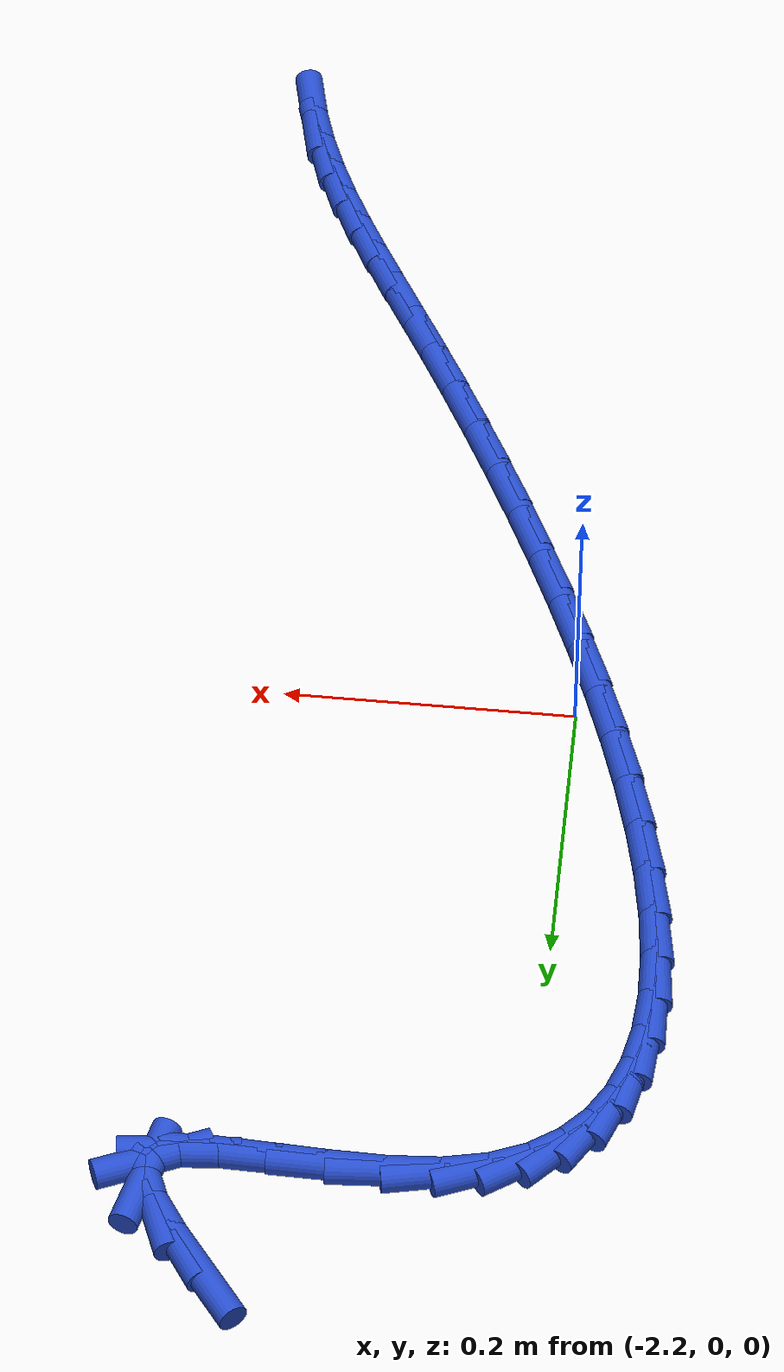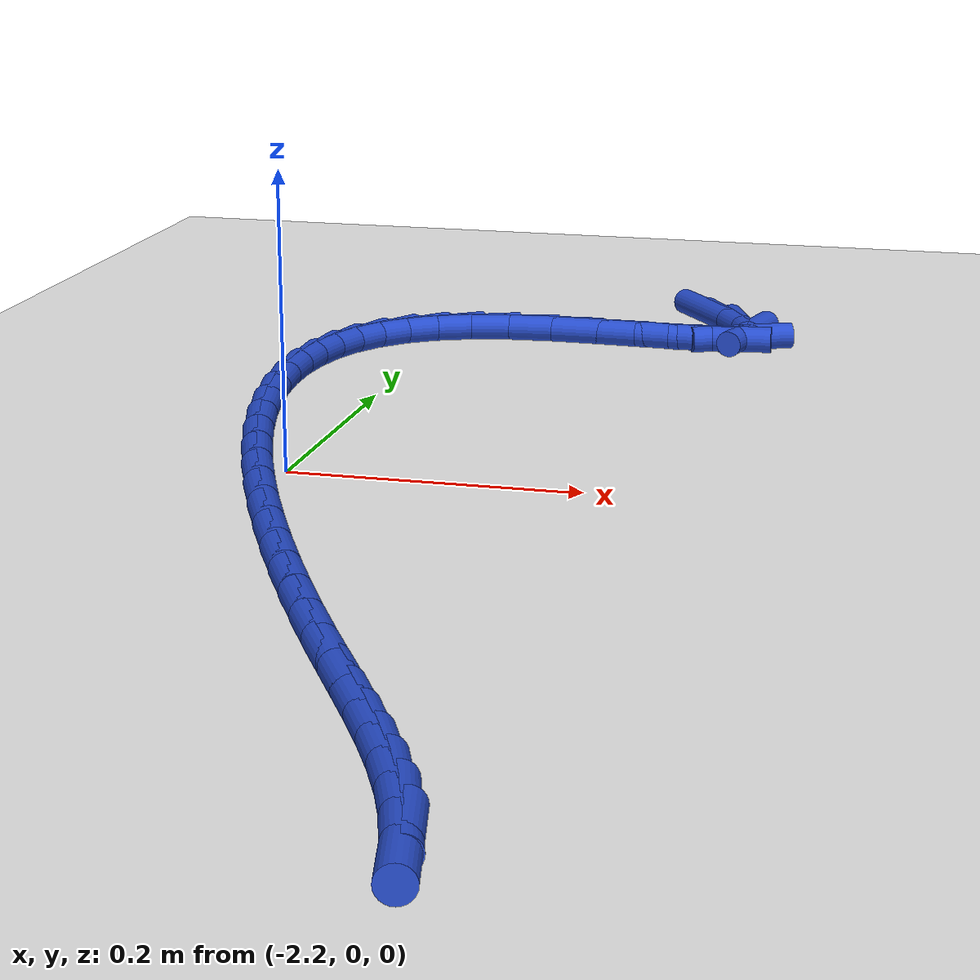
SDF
<sdf version="1.6">
 <world name="default">
  <model name="ground_plane">
   <static>1</static>
   <link name="link">
    <collision name="collision">
     <geometry><plane><normal>0 0 1</normal><size>100 100</size></plane></geometry>
     <surface><friction><ode><mu>100</mu><mu2>50</mu2></ode></friction></surface>
    </collision>
    <visual name="visual">
     <cast_shadows>0</cast_shadows>
     <geometry><plane><normal>0 0 1</normal><size>100 100</size></plane></geometry>
     <material>
      <script><uri>file://media/materials/scripts/gazebo.material</uri><name>Gazebo/WhiteGlow</name></script>
     </material>
    </visual>
   </link>
  </model>
  <model name="line">
   <link name="link_106">
    <pose>-2.003185451541206 0.4839385128213552 0.01 0 1.57 -0.9181451136404912</pose>
    <collision name="collision">
     <geometry><cylinder><radius>0.01</radius><length>0.08</length></cylinder></geometry>
    </collision>
    <visual name="visual">
     <material>
      <script><name>Gazebo/Blue</name><uri>file://media/materials/scripts/gazebo.material</uri></script>
     </material>
     <geometry><cylinder><radius>0.01</radius><length>0.08</length></cylinder></geometry>
    </visual>
   </link>
   <link name="link_107">
    <pose>-1.9820492375744934 0.45628765192570137 0.01 0 1.57 -0.9885985828411454</pose>
    <collision name="collision">
     <geometry><cylinder><radius>0.01</radius><length>0.08</length></cylinder></geometry>
    </collision>
    <visual name="visual">
     <material>
      <script><name>Gazebo/Blue</name><uri>file://media/materials/scripts/gazebo.material</uri></script>
     </material>
     <geometry><cylinder><radius>0.01</radius><length>0.08</length></cylinder></geometry>
    </visual>
   </link>
   <link name="link_108">
    <pose>-1.9662816024732028 0.4323361140234032 0.01 0 1.57 -1.1919953408915438</pose>
    <collision name="collision">
     <geometry><cylinder><radius>0.01</radius><length>0.08</length></cylinder></geometry>
    </collision>
    <visual name="visual">
     <material>
      <script><name>Gazebo/Blue</name><uri>file://media/materials/scripts/gazebo.material</uri></script>
     </material>
     <geometry><cylinder><radius>0.01</radius><length>0.08</length></cylinder></geometry>
    </visual>
   </link>
   <link name="link_109">
    <pose>-1.9586428859786063 0.41314447255337716 0.01 0 1.57 1.3323221442981257</pose>
    <collision name="collision">
     <geometry><cylinder><radius>0.01</radius><length>0.08</length></cylinder></geometry>
    </collision>
    <visual name="visual">
     <material>
      <script><name>Gazebo/Blue</name><uri>file://media/materials/scripts/gazebo.material</uri></script>
     </material>
     <geometry><cylinder><radius>0.01</radius><length>0.08</length></cylinder></geometry>
    </visual>
   </link>
   <link name="link_110">
    <pose>-1.9618934202263727 0.3997732971142027 0.01 0 1.57 0.4173890633531754</pose>
    <collision name="collision">
     <geometry><cylinder><radius>0.01</radius><length>0.08</length></cylinder></geometry>
    </collision>
    <visual name="visual">
     <material>
      <script><name>Gazebo/Blue</name><uri>file://media/materials/scripts/gazebo.material</uri></script>
     </material>
     <geometry><cylinder><radius>0.01</radius><length>0.08</length></cylinder></geometry>
    </visual>
   </link>
   <link name="link_111">
    <pose>-1.9777347578794817 0.39274854213552385 0.01 0 1.57 0.08275734459474955</pose>
    <collision name="collision">
     <geometry><cylinder><radius>0.01</radius><length>0.08</length></cylinder></geometry>
    </collision>
    <visual name="visual">
     <material>
      <script><name>Gazebo/Blue</name><uri>file://media/materials/scripts/gazebo.material</uri></script>
     </material>
     <geometry><cylinder><radius>0.01</radius><length>0.08</length></cylinder></geometry>
    </visual>
   </link>
   <link name="link_112">
    <pose>-2.0038759622266595 0.3905802130827771 0.01 0 1.57 -0.021767838373841563</pose>
    <collision name="collision">
     <geometry><cylinder><radius>0.01</radius><length>0.08</length></cylinder></geometry>
    </collision>
    <visual name="visual">
     <material>
      <script><name>Gazebo/Blue</name><uri>file://media/materials/scripts/gazebo.material</uri></script>
     </material>
     <geometry><cylinder><radius>0.01</radius><length>0.08</length></cylinder></geometry>
    </visual>
   </link>
   <link name="link_113">
    <pose>-2.0370851939995127 0.3913032204724505 0.01 0 1.57 -0.044490412898163995</pose>
    <collision name="collision">
     <geometry><cylinder><radius>0.01</radius><length>0.08</length></cylinder></geometry>
    </collision>
    <visual name="visual">
     <material>
      <script><name>Gazebo/Blue</name><uri>file://media/materials/scripts/gazebo.material</uri></script>
     </material>
     <geometry><cylinder><radius>0.01</radius><length>0.08</length></cylinder></geometry>
    </visual>
   </link>
   <link name="link_114">
    <pose>-2.074130613929651 0.3929524748210327 0.01 0 1.57 -0.01621147666175413</pose>
    <collision name="collision">
     <geometry><cylinder><radius>0.01</radius><length>0.08</length></cylinder></geometry>
    </collision>
    <visual name="visual">
     <material>
      <script><name>Gazebo/Blue</name><uri>file://media/materials/scripts/gazebo.material</uri></script>
     </material>
     <geometry><cylinder><radius>0.01</radius><length>0.08</length></cylinder></geometry>
    </visual>
   </link>
   <link name="link_115">
    <pose>-2.111780382748684 0.39356288664501227 0.01 0 1.57 0.06803668052393537</pose>
    <collision name="collision">
     <geometry><cylinder><radius>0.01</radius><length>0.08</length></cylinder></geometry>
    </collision>
    <visual name="visual">
     <material>
      <script><name>Gazebo/Blue</name><uri>file://media/materials/scripts/gazebo.material</uri></script>
     </material>
     <geometry><cylinder><radius>0.01</radius><length>0.08</length></cylinder></geometry>
    </visual>
   </link>
   <link name="link_116">
    <pose>-2.146812526087872 0.3911757313908698 0.01 0 1.57 0.2152964946482392</pose>
    <collision name="collision">
     <geometry><cylinder><radius>0.01</radius><length>0.08</length></cylinder></geometry>
    </collision>
    <visual name="visual">
     <material>
      <script><name>Gazebo/Blue</name><uri>file://media/materials/scripts/gazebo.material</uri></script>
     </material>
     <geometry><cylinder><radius>0.01</radius><length>0.08</length></cylinder></geometry>
    </visual>
   </link>
   <link name="link_117">
    <pose>-2.1771156784528922 0.38454886024152196 0.01 0 1.57 0.39772248968100693</pose>
    <collision name="collision">
     <geometry><cylinder><radius>0.01</radius><length>0.08</length></cylinder></geometry>
    </collision>
    <visual name="visual">
     <material>
      <script><name>Gazebo/Blue</name><uri>file://media/materials/scripts/gazebo.material</uri></script>
     </material>
     <geometry><cylinder><radius>0.01</radius><length>0.08</length></cylinder></geometry>
    </visual>
   </link>
   <link name="link_118">
    <pose>-2.2026921595432625 0.37380389479381454 0.01 0 1.57 0.6051749790766141</pose>
    <collision name="collision">
     <geometry><cylinder><radius>0.01</radius><length>0.08</length></cylinder></geometry>
    </collision>
    <visual name="visual">
     <material>
      <script><name>Gazebo/Blue</name><uri>file://media/materials/scripts/gazebo.material</uri></script>
     </material>
     <geometry><cylinder><radius>0.01</radius><length>0.08</length></cylinder></geometry>
    </visual>
   </link>
   <link name="link_119">
    <pose>-2.2237812044734704 0.3592153167935318 0.01 0 1.57 0.8230066901588038</pose>
    <collision name="collision">
     <geometry><cylinder><radius>0.01</radius><length>0.08</length></cylinder></geometry>
    </collision>
    <visual name="visual">
     <material>
      <script><name>Gazebo/Blue</name><uri>file://media/materials/scripts/gazebo.material</uri></script>
     </material>
     <geometry><cylinder><radius>0.01</radius><length>0.08</length></cylinder></geometry>
    </visual>
   </link>
   <link name="link_120">
    <pose>-2.240622048358002 0.34105760798645873 0.01 0 1.57 1.0317330779724645</pose>
    <collision name="collision">
     <geometry><cylinder><radius>0.01</radius><length>0.08</length></cylinder></geometry>
    </collision>
    <visual name="visual">
     <material>
      <script><name>Gazebo/Blue</name><uri>file://media/materials/scripts/gazebo.material</uri></script>
     </material>
     <geometry><cylinder><radius>0.01</radius><length>0.08</length></cylinder></geometry>
    </visual>
   </link>
   <link name="link_121">
    <pose>-2.2534539263113493 0.31960525011837937 0.01 0 1.57 1.216153597892612</pose>
    <collision name="collision">
     <geometry><cylinder><radius>0.01</radius><length>0.08</length></cylinder></geometry>
    </collision>
    <visual name="visual">
     <material>
      <script><name>Gazebo/Blue</name><uri>file://media/materials/scripts/gazebo.material</uri></script>
     </material>
     <geometry><cylinder><radius>0.01</radius><length>0.08</length></cylinder></geometry>
    </visual>
   </link>
   <link name="link_122">
    <pose>-2.2625160734479977 0.2951327249350785 0.01 0 1.57 1.3702936027180865</pose>
    <collision name="collision">
     <geometry><cylinder><radius>0.01</radius><length>0.08</length></cylinder></geometry>
    </collision>
    <visual name="visual">
     <material>
      <script><name>Gazebo/Blue</name><uri>file://media/materials/scripts/gazebo.material</uri></script>
     </material>
     <geometry><cylinder><radius>0.01</radius><length>0.08</length></cylinder></geometry>
    </visual>
   </link>
   <link name="link_123">
    <pose>-2.2680477248824356 0.26791451418234075 0.01 0 1.57 1.4954781427114892</pose>
    <collision name="collision">
     <geometry><cylinder><radius>0.01</radius><length>0.08</length></cylinder></geometry>
    </collision>
    <visual name="visual">
     <material>
      <script><name>Gazebo/Blue</name><uri>file://media/materials/scripts/gazebo.material</uri></script>
     </material>
     <geometry><cylinder><radius>0.01</radius><length>0.08</length></cylinder></geometry>
    </visual>
   </link>
   <link name="link_124">
    <pose>-2.270288115729152 0.23822509960595054 0.01 0 1.57 -1.545347668224866</pose>
    <collision name="collision">
     <geometry><cylinder><radius>0.01</radius><length>0.08</length></cylinder></geometry>
    </collision>
    <visual name="visual">
     <material>
      <script><name>Gazebo/Blue</name><uri>file://media/materials/scripts/gazebo.material</uri></script>
     </material>
     <geometry><cylinder><radius>0.01</radius><length>0.08</length></cylinder></geometry>
    </visual>
   </link>
   <link name="link_125">
    <pose>-2.2694764811026347 0.20633896295169257 0.01 0 1.57 -1.4639992774902677</pose>
    <collision name="collision">
     <geometry><cylinder><radius>0.01</radius><length>0.08</length></cylinder></geometry>
    </collision>
    <visual name="visual">
     <material>
      <script><name>Gazebo/Blue</name><uri>file://media/materials/scripts/gazebo.material</uri></script>
     </material>
     <geometry><cylinder><radius>0.01</radius><length>0.08</length></cylinder></geometry>
    </visual>
   </link>
   <link name="link_126">
    <pose>-2.2658520561173723 0.1725305859653513 0.01 0 1.57 -1.3977379441174096</pose>
    <collision name="collision">
     <geometry><cylinder><radius>0.01</radius><length>0.08</length></cylinder></geometry>
    </collision>
    <visual name="visual">
     <material>
      <script><name>Gazebo/Blue</name><uri>file://media/materials/scripts/gazebo.material</uri></script>
     </material>
     <geometry><cylinder><radius>0.01</radius><length>0.08</length></cylinder></geometry>
    </visual>
   </link>
   <link name="link_127">
    <pose>-2.2596540758878514 0.1370744503927114 0.01 0 1.57 -1.3431416399743255</pose>
    <collision name="collision">
     <geometry><cylinder><radius>0.01</radius><length>0.08</length></cylinder></geometry>
    </collision>
    <visual name="visual">
     <material>
      <script><name>Gazebo/Blue</name><uri>file://media/materials/scripts/gazebo.material</uri></script>
     </material>
     <geometry><cylinder><radius>0.01</radius><length>0.08</length></cylinder></geometry>
    </visual>
   </link>
   <link name="link_128">
    <pose>-2.2511217755285613 0.1002450379795573 0.01 0 1.57 -1.2976045781604302</pose>
    <collision name="collision">
     <geometry><cylinder><radius>0.01</radius><length>0.08</length></cylinder></geometry>
    </collision>
    <visual name="visual">
     <material>
      <script><name>Gazebo/Blue</name><uri>file://media/materials/scripts/gazebo.material</uri></script>
     </material>
     <geometry><cylinder><radius>0.01</radius><length>0.08</length></cylinder></geometry>
    </visual>
   </link>
   <link name="link_129">
    <pose>-2.24049439015399 0.062316830471673655 0.01 0 1.57 -1.2591651019538492</pose>
    <collision name="collision">
     <geometry><cylinder><radius>0.01</radius><length>0.08</length></cylinder></geometry>
    </collision>
    <visual name="visual">
     <material>
      <script><name>Gazebo/Blue</name><uri>file://media/materials/scripts/gazebo.material</uri></script>
     </material>
     <geometry><cylinder><radius>0.01</radius><length>0.08</length></cylinder></geometry>
    </visual>
   </link>
   <link name="link_130">
    <pose>-2.228011154878626 0.023564309614844958 0.01 0 1.57 -1.226344817475363</pose>
    <collision name="collision">
     <geometry><cylinder><radius>0.01</radius><length>0.08</length></cylinder></geometry>
    </collision>
    <visual name="visual">
     <material>
      <script><name>Gazebo/Blue</name><uri>file://media/materials/scripts/gazebo.material</uri></script>
     </material>
     <geometry><cylinder><radius>0.01</radius><length>0.08</length></cylinder></geometry>
    </visual>
   </link>
   <link name="link_131">
    <pose>-2.213911304816957 -0.015738042845144185 0.01 0 1.57 -1.198021105719699</pose>
    <collision name="collision">
     <geometry><cylinder><radius>0.01</radius><length>0.08</length></cylinder></geometry>
    </collision>
    <visual name="visual">
     <material>
      <script><name>Gazebo/Blue</name><uri>file://media/materials/scripts/gazebo.material</uri></script>
     </material>
     <geometry><cylinder><radius>0.01</radius><length>0.08</length></cylinder></geometry>
    </visual>
   </link>
   <link name="link_132">
    <pose>-2.1984340750834708 -0.05531574516250917 0.01 0 1.57 -1.173332119123828</pose>
    <collision name="collision">
     <geometry><cylinder><radius>0.01</radius><length>0.08</length></cylinder></geometry>
    </collision>
    <visual name="visual">
     <material>
      <script><name>Gazebo/Blue</name><uri>file://media/materials/scripts/gazebo.material</uri></script>
     </material>
     <geometry><cylinder><radius>0.01</radius><length>0.08</length></cylinder></geometry>
    </visual>
   </link>
   <link name="link_133">
    <pose>-2.1818187007926566 -0.0948943155914656 0.01 0 1.57 -1.1516075691525498</pose>
    <collision name="collision">
     <geometry><cylinder><radius>0.01</radius><length>0.08</length></cylinder></geometry>
    </collision>
    <visual name="visual">
     <material>
      <script><name>Gazebo/Blue</name><uri>file://media/materials/scripts/gazebo.material</uri></script>
     </material>
     <geometry><cylinder><radius>0.01</radius><length>0.08</length></cylinder></geometry>
    </visual>
   </link>
   <link name="link_134">
    <pose>-2.164304417059001 -0.13419927238622875 0.01 0 1.57 -1.1323184841018992</pose>
    <collision name="collision">
     <geometry><cylinder><radius>0.01</radius><length>0.08</length></cylinder></geometry>
    </collision>
    <visual name="visual">
     <material>
      <script><name>Gazebo/Blue</name><uri>file://media/materials/scripts/gazebo.material</uri></script>
     </material>
     <geometry><cylinder><radius>0.01</radius><length>0.08</length></cylinder></geometry>
    </visual>
   </link>
   <link name="link_135">
    <pose>-2.1461304589969936 -0.17295613380101416 0.01 0 1.57 -1.1150404270405643</pose>
    <collision name="collision">
     <geometry><cylinder><radius>0.01</radius><length>0.08</length></cylinder></geometry>
    </collision>
    <visual name="visual">
     <material>
      <script><name>Gazebo/Blue</name><uri>file://media/materials/scripts/gazebo.material</uri></script>
     </material>
     <geometry><cylinder><radius>0.01</radius><length>0.08</length></cylinder></geometry>
    </visual>
   </link>
   <link name="link_136">
    <pose>-2.127536061721122 -0.21089041809003722 0.01 0 1.57 -1.0994260273029801</pose>
    <collision name="collision">
     <geometry><cylinder><radius>0.01</radius><length>0.08</length></cylinder></geometry>
    </collision>
    <visual name="visual">
     <material>
      <script><name>Gazebo/Blue</name><uri>file://media/materials/scripts/gazebo.material</uri></script>
     </material>
     <geometry><cylinder><radius>0.01</radius><length>0.08</length></cylinder></geometry>
    </visual>
   </link>
   <link name="link_137">
    <pose>-2.108760460345874 -0.24772764350751336 0.01 0 1.57 -1.0851837153965866</pose>
    <collision name="collision">
     <geometry><cylinder><radius>0.01</radius><length>0.08</length></cylinder></geometry>
    </collision>
    <visual name="visual">
     <material>
      <script><name>Gazebo/Blue</name><uri>file://media/materials/scripts/gazebo.material</uri></script>
     </material>
     <geometry><cylinder><radius>0.01</radius><length>0.08</length></cylinder></geometry>
    </visual>
   </link>
   <link name="link_138">
    <pose>-2.0900428899857384 -0.2831933283076581 0.01 0 1.57 -1.072060184967886</pose>
    <collision name="collision">
     <geometry><cylinder><radius>0.01</radius><length>0.08</length></cylinder></geometry>
    </collision>
    <visual name="visual">
     <material>
      <script><name>Gazebo/Blue</name><uri>file://media/materials/scripts/gazebo.material</uri></script>
     </material>
     <geometry><cylinder><radius>0.01</radius><length>0.08</length></cylinder></geometry>
    </visual>
   </link>
   <link name="link_139">
    <pose>-2.0716225857552026 -0.3170129907446868 0.01 0 1.57 -1.060401567428905</pose>
    <collision name="collision">
     <geometry><cylinder><radius>0.01</radius><length>0.08</length></cylinder></geometry>
    </collision>
    <visual name="visual">
     <material>
      <script><name>Gazebo/Blue</name><uri>file://media/materials/scripts/gazebo.material</uri></script>
     </material>
     <geometry><cylinder><radius>0.01</radius><length>0.08</length></cylinder></geometry>
    </visual>
   </link>
   <link name="link_140">
    <pose>-2.05373552093233 -0.34896118926450975 0.01 0 1.57 -1.0550779980181115</pose>
    <collision name="collision">
     <geometry><cylinder><radius>0.01</radius><length>0.08</length></cylinder></geometry>
    </collision>
    <visual name="visual">
     <material>
      <script><name>Gazebo/Blue</name><uri>file://media/materials/scripts/gazebo.material</uri></script>
     </material>
     <geometry><cylinder><radius>0.01</radius><length>0.08</length></cylinder></geometry>
    </visual>
   </link>
   <link name="link_141">
    <pose>-2.0365916893974814 -0.3792030704594331 0.01 0 1.57 -1.059621425566111</pose>
    <collision name="collision">
     <geometry><cylinder><radius>0.01</radius><length>0.08</length></cylinder></geometry>
    </collision>
    <visual name="visual">
     <material>
      <script><name>Gazebo/Blue</name><uri>file://media/materials/scripts/gazebo.material</uri></script>
     </material>
     <geometry><cylinder><radius>0.01</radius><length>0.08</length></cylinder></geometry>
    </visual>
   </link>
   <link name="link_142">
    <pose>-2.0203886657064203 -0.40809049968372335 0.01 0 1.57 -1.0754888218636611</pose>
    <collision name="collision">
     <geometry><cylinder><radius>0.01</radius><length>0.08</length></cylinder></geometry>
    </collision>
    <visual name="visual">
     <material>
      <script><name>Gazebo/Blue</name><uri>file://media/materials/scripts/gazebo.material</uri></script>
     </material>
     <geometry><cylinder><radius>0.01</radius><length>0.08</length></cylinder></geometry>
    </visual>
   </link>
   <link name="link_143">
    <pose>-2.005323947161511 -0.43597650376050234 0.01 0 1.57 -1.1039197977450157</pose>
    <collision name="collision">
     <geometry><cylinder><radius>0.01</radius><length>0.08</length></cylinder></geometry>
    </collision>
    <visual name="visual">
     <material>
      <script><name>Gazebo/Blue</name><uri>file://media/materials/scripts/gazebo.material</uri></script>
     </material>
     <geometry><cylinder><radius>0.01</radius><length>0.08</length></cylinder></geometry>
    </visual>
   </link>
   <link name="link_144">
    <pose>-1.9915950310651183 -0.4632141095128918 0.01 0 1.57 -1.145734252698608</pose>
    <collision name="collision">
     <geometry><cylinder><radius>0.01</radius><length>0.08</length></cylinder></geometry>
    </collision>
    <visual name="visual">
     <material>
      <script><name>Gazebo/Blue</name><uri>file://media/materials/scripts/gazebo.material</uri></script>
     </material>
     <geometry><cylinder><radius>0.01</radius><length>0.08</length></cylinder></geometry>
    </visual>
   </link>
   <link name="link_145">
    <pose>-1.9793994147196066 -0.490156343764013 0.01 0 1.57 -1.2010359767470757</pose>
    <collision name="collision">
     <geometry><cylinder><radius>0.01</radius><length>0.08</length></cylinder></geometry>
    </collision>
    <visual name="visual">
     <material>
      <script><name>Gazebo/Blue</name><uri>file://media/materials/scripts/gazebo.material</uri></script>
     </material>
     <geometry><cylinder><radius>0.01</radius><length>0.08</length></cylinder></geometry>
    </visual>
   </link>
   <link name="link_146">
    <pose>-1.9689345954273405 -0.5171562333369895 0.01 0 1.57 -1.2688848770801657</pose>
    <collision name="collision">
     <geometry><cylinder><radius>0.01</radius><length>0.08</length></cylinder></geometry>
    </collision>
    <visual name="visual">
     <material>
      <script><name>Gazebo/Blue</name><uri>file://media/materials/scripts/gazebo.material</uri></script>
     </material>
     <geometry><cylinder><radius>0.01</radius><length>0.08</length></cylinder></geometry>
    </visual>
   </link>
   <link name="link_147">
    <pose>-1.9603980704906845 -0.544566805054942 0.01 0 1.57 -1.3470670308090376</pose>
    <collision name="collision">
     <geometry><cylinder><radius>0.01</radius><length>0.08</length></cylinder></geometry>
    </collision>
    <visual name="visual">
     <material>
      <script><name>Gazebo/Blue</name><uri>file://media/materials/scripts/gazebo.material</uri></script>
     </material>
     <geometry><cylinder><radius>0.01</radius><length>0.08</length></cylinder></geometry>
    </visual>
   </link>
  </model>
 </world>
</sdf>
